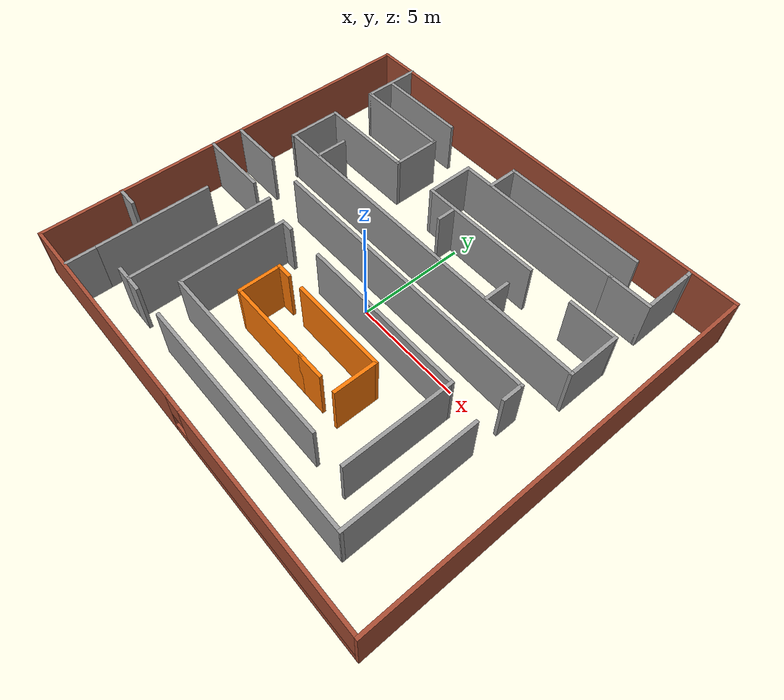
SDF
<?xml version='1.0'?>
<sdf version='1.6'>
  <model name='officeroom'>
    <pose frame=''>0.028159 0.537764 0 0 -0 0</pose>
    <link name='Wall_0'>
      <collision name='Wall_0_Collision'>
        <geometry>
          <box>
            <size>2 0.15 2.5</size>
          </box>
        </geometry>
        <pose frame=''>0 0 1.25 0 -0 0</pose>
      </collision>
      <visual name='Wall_0_Visual'>
        <pose frame=''>0 0 1.25 0 -0 0</pose>
        <geometry>
          <box>
            <size>2 0.15 2.5</size>
          </box>
        </geometry>
        <material>
          <script>
            <uri>file://media/materials/scripts/gazebo.material</uri>
            <name>Gazebo/Grey</name>
          </script>
          <ambient>0.996078 0.47451 0.0196078 1</ambient>
        </material>
        <meta>
          <layer>0</layer>
        </meta>
      </visual>
      <pose frame=''>-2.48816 -3.76276 0 0 -0 -1.5708</pose>
    </link>
    <link name='Wall_1'>
      <collision name='Wall_1_Collision'>
        <geometry>
          <box>
            <size>4 0.15 2.5</size>
          </box>
        </geometry>
        <pose frame=''>0 0 1.25 0 -0 0</pose>
      </collision>
      <visual name='Wall_1_Visual'>
        <pose frame=''>0 0 1.25 0 -0 0</pose>
        <geometry>
          <box>
            <size>4 0.15 2.5</size>
          </box>
        </geometry>
        <material>
          <script>
            <uri>file://media/materials/scripts/gazebo.material</uri>
            <name>Gazebo/Grey</name>
          </script>
          <ambient>0.996078 0.47451 0.0196078 1</ambient>
        </material>
        <meta>
          <layer>0</layer>
        </meta>
      </visual>
      <pose frame=''>-0.563159 -4.68776 0 0 -0 0</pose>
    </link>
    <link name='Wall_10'>
      <collision name='Wall_10_Collision'>
        <geometry>
          <box>
            <size>8.5 0.15 2.5</size>
          </box>
        </geometry>
        <pose frame=''>0 0 1.25 0 -0 0</pose>
      </collision>
      <visual name='Wall_10_Visual'>
        <pose frame=''>0 0 1.25 0 -0 0</pose>
        <geometry>
          <box>
            <size>8.5 0.15 2.5</size>
          </box>
        </geometry>
        <material>
          <script>
            <uri>file://media/materials/scripts/gazebo.material</uri>
            <name>Gazebo/Grey</name>
          </script>
          <ambient>1 1 1 1</ambient>
        </material>
        <meta>
          <layer>0</layer>
        </meta>
      </visual>
      <pose frame=''>-0.128138 -6.19217 0 0 -0 0</pose>
    </link>
    <link name='Wall_12'>
      <collision name='Wall_12_Collision'>
        <geometry>
          <box>
            <size>5 0.15 2.5</size>
          </box>
        </geometry>
        <pose frame=''>0 0 1.25 0 -0 0</pose>
      </collision>
      <visual name='Wall_12_Visual'>
        <pose frame=''>0 0 1.25 0 -0 0</pose>
        <geometry>
          <box>
            <size>5 0.15 2.5</size>
          </box>
        </geometry>
        <material>
          <script>
            <uri>file://media/materials/scripts/gazebo.material</uri>
            <name>Gazebo/Grey</name>
          </script>
          <ambient>1 1 1 1</ambient>
        </material>
        <meta>
          <layer>0</layer>
        </meta>
      </visual>
      <pose frame=''>5.64686 -3.76716 0 0 -0 1.5708</pose>
    </link>
    <link name='Wall_13'>
      <collision name='Wall_13_Collision'>
        <geometry>
          <box>
            <size>7.75 0.15 2.5</size>
          </box>
        </geometry>
        <pose frame=''>0 0 1.25 0 -0 0</pose>
      </collision>
      <visual name='Wall_13_Visual'>
        <pose frame=''>0 0 1.25 0 -0 0</pose>
        <geometry>
          <box>
            <size>7.75 0.15 2.5</size>
          </box>
        </geometry>
        <material>
          <script>
            <uri>file://media/materials/scripts/gazebo.material</uri>
            <name>Gazebo/Grey</name>
          </script>
          <ambient>1 1 1 1</ambient>
        </material>
        <meta>
          <layer>0</layer>
        </meta>
      </visual>
      <pose frame=''>1.84686 -1.34217 0 0 -0 3.14159</pose>
    </link>
    <link name='Wall_15'>
      <collision name='Wall_15_Collision'>
        <geometry>
          <box>
            <size>0.5 0.15 2.5</size>
          </box>
        </geometry>
        <pose frame=''>0 0 1.25 0 -0 0</pose>
      </collision>
      <visual name='Wall_15_Visual'>
        <pose frame=''>0 0 1.25 0 -0 0</pose>
        <geometry>
          <box>
            <size>0.5 0.15 2.5</size>
          </box>
        </geometry>
        <material>
          <script>
            <uri>file://media/materials/scripts/gazebo.material</uri>
            <name>Gazebo/Grey</name>
          </script>
          <ambient>1 1 1 1</ambient>
        </material>
        <meta>
          <layer>0</layer>
        </meta>
      </visual>
      <pose frame=''>-3.97814 -1.34217 0 0 -0 3.14159</pose>
    </link>
    <link name='Wall_19'>
      <collision name='Wall_19_Collision'>
        <geometry>
          <box>
            <size>13.25 0.15 2.5</size>
          </box>
        </geometry>
        <pose frame=''>0 0 1.25 0 -0 0</pose>
      </collision>
      <visual name='Wall_19_Visual'>
        <pose frame=''>0 0 1.25 0 -0 0</pose>
        <geometry>
          <box>
            <size>13.25 0.15 2.5</size>
          </box>
        </geometry>
        <material>
          <script>
            <uri>file://media/materials/scripts/gazebo.material</uri>
            <name>Gazebo/Grey</name>
          </script>
          <ambient>1 1 1 1</ambient>
        </material>
        <meta>
          <layer>0</layer>
        </meta>
      </visual>
      <pose frame=''>0.753619 0.421126 0 0 -0 0</pose>
    </link>
    <link name='Wall_2'>
      <collision name='Wall_2_Collision'>
        <geometry>
          <box>
            <size>1.25 0.15 2.5</size>
          </box>
        </geometry>
        <pose frame=''>0 0 1.25 0 -0 0</pose>
      </collision>
      <visual name='Wall_2_Visual'>
        <pose frame=''>0 0 1.25 0 -0 0</pose>
        <geometry>
          <box>
            <size>1.25 0.15 2.5</size>
          </box>
        </geometry>
        <material>
          <script>
            <uri>file://media/materials/scripts/gazebo.material</uri>
            <name>Gazebo/Grey</name>
          </script>
          <ambient>0.996078 0.47451 0.0196078 1</ambient>
        </material>
        <meta>
          <layer>0</layer>
        </meta>
      </visual>
      <pose frame=''>1.91184 -4.68776 0 0 -0 0</pose>
    </link>
    <link name='Wall_20'>
      <collision name='Wall_20_Collision'>
        <geometry>
          <box>
            <size>1 0.15 2.5</size>
          </box>
        </geometry>
        <pose frame=''>0 0 1.25 0 -0 0</pose>
      </collision>
      <visual name='Wall_20_Visual'>
        <pose frame=''>0 0 1.25 0 -0 0</pose>
        <geometry>
          <box>
            <size>1 0.15 2.5</size>
          </box>
        </geometry>
        <material>
          <script>
            <uri>file://media/materials/scripts/gazebo.material</uri>
            <name>Gazebo/Grey</name>
          </script>
          <ambient>1 1 1 1</ambient>
        </material>
        <meta>
          <layer>0</layer>
        </meta>
      </visual>
      <pose frame=''>7.30362 -0.003874 0 0 -0 -1.5708</pose>
    </link>
    <link name='Wall_22'>
      <collision name='Wall_22_Collision'>
        <geometry>
          <box>
            <size>6 0.15 2.5</size>
          </box>
        </geometry>
        <pose frame=''>0 0 1.25 0 -0 0</pose>
      </collision>
      <visual name='Wall_22_Visual'>
        <pose frame=''>0 0 1.25 0 -0 0</pose>
        <geometry>
          <box>
            <size>6 0.15 2.5</size>
          </box>
        </geometry>
        <material>
          <script>
            <uri>file://media/materials/scripts/gazebo.material</uri>
            <name>Gazebo/Grey</name>
          </script>
          <ambient>1 1 1 1</ambient>
        </material>
        <meta>
          <layer>0</layer>
        </meta>
      </visual>
      <pose frame=''>7.30362 -4.70387 0 0 -0 -1.5708</pose>
    </link>
    <link name='Wall_23'>
      <collision name='Wall_23_Collision'>
        <geometry>
          <box>
            <size>10.945 0.15 2.5</size>
          </box>
        </geometry>
        <pose frame=''>0 0 1.25 0 -0 0</pose>
      </collision>
      <visual name='Wall_23_Visual'>
        <pose frame=''>0 0 1.25 0 -0 0</pose>
        <geometry>
          <box>
            <size>10.945 0.15 2.5</size>
          </box>
        </geometry>
        <material>
          <script>
            <uri>file://media/materials/scripts/gazebo.material</uri>
            <name>Gazebo/Grey</name>
          </script>
          <ambient>1 1 1 1</ambient>
        </material>
        <meta>
          <layer>0</layer>
        </meta>
      </visual>
      <pose frame=''>1.90614 -7.63143 0 0 -0 -3.14112</pose>
    </link>
    <link name='Wall_25'>
      <collision name='Wall_25_Collision'>
        <geometry>
          <box>
            <size>0.805113 0.15 2.5</size>
          </box>
        </geometry>
        <pose frame=''>0 0 1.25 0 -0 0</pose>
      </collision>
      <visual name='Wall_25_Visual'>
        <pose frame=''>0 0 1.25 0 -0 0</pose>
        <geometry>
          <box>
            <size>0.805113 0.15 2.5</size>
          </box>
        </geometry>
        <material>
          <script>
            <uri>file://media/materials/scripts/gazebo.material</uri>
            <name>Gazebo/Grey</name>
          </script>
          <ambient>1 1 1 1</ambient>
        </material>
        <meta>
          <layer>0</layer>
        </meta>
      </visual>
      <pose frame=''>-5.41886 -7.63143 0 0 -0 3.13379</pose>
    </link>
    <link name='Wall_26'>
      <collision name='Wall_26_Collision'>
        <geometry>
          <box>
            <size>6.75 0.15 2.5</size>
          </box>
        </geometry>
        <pose frame=''>0 0 1.25 0 -0 0</pose>
      </collision>
      <visual name='Wall_26_Visual'>
        <pose frame=''>0 0 1.25 0 -0 0</pose>
        <geometry>
          <box>
            <size>6.75 0.15 2.5</size>
          </box>
        </geometry>
        <material>
          <script>
            <uri>file://media/materials/scripts/gazebo.material</uri>
            <name>Gazebo/Grey</name>
          </script>
          <ambient>1 1 1 1</ambient>
        </material>
        <meta>
          <layer>0</layer>
        </meta>
      </visual>
      <pose frame=''>-5.74638 -4.32887 0 0 -0 1.5708</pose>
    </link>
    <link name='Wall_29'>
      <pose frame=''>0.008167 -9.18936 0 0 -0 0</pose>
      <visual name='Wall_29_Visual_0'>
        <pose frame=''>-5.22023 0 1.25 0 -0 0</pose>
        <geometry>
          <box>
            <size>9.80953 0.15 2.5</size>
          </box>
        </geometry>
        <material>
          <script>
            <uri>file://media/materials/scripts/gazebo.material</uri>
            <name>Gazebo/Bricks</name>
          </script>
          <ambient>1 1 1 1</ambient>
        </material>
        <meta>
          <layer>0</layer>
        </meta>
      </visual>
      <collision name='Wall_29_Collision_0'>
        <geometry>
          <box>
            <size>9.80953 0.15 2.5</size>
          </box>
        </geometry>
        <pose frame=''>-5.22023 0 1.25 0 -0 0</pose>
      </collision>
      <visual name='Wall_29_Visual_1'>
        <pose frame=''>4.90477 0 0.25 0 -0 0</pose>
        <geometry>
          <box>
            <size>10.4405 0.15 0.5</size>
          </box>
        </geometry>
        <material>
          <script>
            <uri>file://media/materials/scripts/gazebo.material</uri>
            <name>Gazebo/Bricks</name>
          </script>
          <ambient>1 1 1 1</ambient>
        </material>
        <meta>
          <layer>0</layer>
        </meta>
      </visual>
      <collision name='Wall_29_Collision_1'>
        <geometry>
          <box>
            <size>10.4405 0.15 0.5</size>
          </box>
        </geometry>
        <pose frame=''>4.90477 0 0.25 0 -0 0</pose>
      </collision>
      <visual name='Wall_29_Visual_2'>
        <pose frame=''>5.30476 0 1.5 0 -0 0</pose>
        <geometry>
          <box>
            <size>9.64047 0.15 2</size>
          </box>
        </geometry>
        <material>
          <script>
            <uri>file://media/materials/scripts/gazebo.material</uri>
            <name>Gazebo/Bricks</name>
          </script>
          <ambient>1 1 1 1</ambient>
        </material>
        <meta>
          <layer>0</layer>
        </meta>
      </visual>
      <collision name='Wall_29_Collision_2'>
        <geometry>
          <box>
            <size>9.64047 0.15 2</size>
          </box>
        </geometry>
        <pose frame=''>5.30476 0 1.5 0 -0 0</pose>
      </collision>
      <visual name='Wall_29_Visual_3'>
        <pose frame=''>0.084531 0 1.9 0 -0 0</pose>
        <geometry>
          <box>
            <size>0.8 0.15 1.2</size>
          </box>
        </geometry>
        <material>
          <script>
            <uri>file://media/materials/scripts/gazebo.material</uri>
            <name>Gazebo/Bricks</name>
          </script>
          <ambient>1 1 1 1</ambient>
        </material>
        <meta>
          <layer>0</layer>
        </meta>
      </visual>
      <collision name='Wall_29_Collision_3'>
        <geometry>
          <box>
            <size>0.8 0.15 1.2</size>
          </box>
        </geometry>
        <pose frame=''>0.084531 0 1.9 0 -0 0</pose>
      </collision>
    </link>
    <link name='Wall_30'>
      <collision name='Wall_30_Collision'>
        <geometry>
          <box>
            <size>18.5 0.15 2.5</size>
          </box>
        </geometry>
        <pose frame=''>0 0 1.25 0 -0 0</pose>
      </collision>
      <visual name='Wall_30_Visual'>
        <pose frame=''>0 0 1.25 0 -0 0</pose>
        <geometry>
          <box>
            <size>18.5 0.15 2.5</size>
          </box>
        </geometry>
        <material>
          <script>
            <uri>file://media/materials/scripts/gazebo.material</uri>
            <name>Gazebo/Bricks</name>
          </script>
          <ambient>1 1 1 1</ambient>
        </material>
        <meta>
          <layer>0</layer>
        </meta>
      </visual>
      <pose frame=''>10.0582 -0.014363 0 0 -0 1.5708</pose>
    </link>
    <link name='Wall_31'>
      <collision name='Wall_31_Collision'>
        <geometry>
          <box>
            <size>20.25 0.15 2.5</size>
          </box>
        </geometry>
        <pose frame=''>0 0 1.25 0 -0 0</pose>
      </collision>
      <visual name='Wall_31_Visual'>
        <pose frame=''>0 0 1.25 0 -0 0</pose>
        <geometry>
          <box>
            <size>20.25 0.15 2.5</size>
          </box>
        </geometry>
        <material>
          <script>
            <uri>file://media/materials/scripts/gazebo.material</uri>
            <name>Gazebo/Bricks</name>
          </script>
          <ambient>1 1 1 1</ambient>
        </material>
        <meta>
          <layer>0</layer>
        </meta>
      </visual>
      <pose frame=''>0.008167 9.16064 0 0 -0 3.14159</pose>
    </link>
    <link name='Wall_32'>
      <collision name='Wall_32_Collision'>
        <geometry>
          <box>
            <size>18.5 0.15 2.5</size>
          </box>
        </geometry>
        <pose frame=''>0 0 1.25 0 -0 0</pose>
      </collision>
      <visual name='Wall_32_Visual'>
        <pose frame=''>0 0 1.25 0 -0 0</pose>
        <geometry>
          <box>
            <size>18.5 0.15 2.5</size>
          </box>
        </geometry>
        <material>
          <script>
            <uri>file://media/materials/scripts/gazebo.material</uri>
            <name>Gazebo/Bricks</name>
          </script>
          <ambient>1 1 1 1</ambient>
        </material>
        <meta>
          <layer>0</layer>
        </meta>
      </visual>
      <pose frame=''>-10.0418 -0.014363 0 0 -0 -1.5708</pose>
    </link>
    <link name='Wall_35'>
      <collision name='Wall_35_Collision'>
        <geometry>
          <box>
            <size>1.5 0.15 2.5</size>
          </box>
        </geometry>
        <pose frame=''>0 0 1.25 0 -0 0</pose>
      </collision>
      <visual name='Wall_35_Visual'>
        <pose frame=''>0 0 1.25 0 -0 0</pose>
        <geometry>
          <box>
            <size>1.5 0.15 2.5</size>
          </box>
        </geometry>
        <material>
          <script>
            <uri>file://media/materials/scripts/gazebo.material</uri>
            <name>Gazebo/Grey</name>
          </script>
          <ambient>1 1 1 1</ambient>
        </material>
        <meta>
          <layer>0</layer>
        </meta>
      </visual>
      <pose frame=''>-7.96202 -8.42823 0 0 -0 1.5708</pose>
    </link>
    <link name='Wall_38'>
      <collision name='Wall_38_Collision'>
        <geometry>
          <box>
            <size>0.75 0.15 2.5</size>
          </box>
        </geometry>
        <pose frame=''>0 0 1.25 0 -0 0</pose>
      </collision>
      <visual name='Wall_38_Visual'>
        <pose frame=''>0 0 1.25 0 -0 0</pose>
        <geometry>
          <box>
            <size>0.75 0.15 2.5</size>
          </box>
        </geometry>
        <material>
          <script>
            <uri>file://media/materials/scripts/gazebo.material</uri>
            <name>Gazebo/Grey</name>
          </script>
          <ambient>1 1 1 1</ambient>
        </material>
        <meta>
          <layer>0</layer>
        </meta>
      </visual>
      <pose frame=''>-6.04638 -7.62887 0 0 -0 3.14159</pose>
    </link>
    <link name='Wall_4'>
      <collision name='Wall_4_Collision'>
        <geometry>
          <box>
            <size>2 0.15 2.5</size>
          </box>
        </geometry>
        <pose frame=''>0 0 1.25 0 -0 0</pose>
      </collision>
      <visual name='Wall_4_Visual'>
        <pose frame=''>0 0 1.25 0 -0 0</pose>
        <geometry>
          <box>
            <size>2 0.15 2.5</size>
          </box>
        </geometry>
        <material>
          <script>
            <uri>file://media/materials/scripts/gazebo.material</uri>
            <name>Gazebo/Grey</name>
          </script>
          <ambient>0.996078 0.47451 0.0196078 1</ambient>
        </material>
        <meta>
          <layer>0</layer>
        </meta>
      </visual>
      <pose frame=''>3.31184 -3.76276 0 0 -0 1.5708</pose>
    </link>
    <link name='Wall_40'>
      <collision name='Wall_40_Collision'>
        <geometry>
          <box>
            <size>2.75 0.15 2.5</size>
          </box>
        </geometry>
        <pose frame=''>0 0 1.25 0 -0 0</pose>
      </collision>
      <visual name='Wall_40_Visual'>
        <pose frame=''>0 0 1.25 0 -0 0</pose>
        <geometry>
          <box>
            <size>2.75 0.15 2.5</size>
          </box>
        </geometry>
        <material>
          <script>
            <uri>file://media/materials/scripts/gazebo.material</uri>
            <name>Gazebo/Grey</name>
          </script>
          <ambient>1 1 1 1</ambient>
        </material>
        <meta>
          <layer>0</layer>
        </meta>
      </visual>
      <pose frame=''>-8.24263 7.88936 0 0 -0 -1.5708</pose>
    </link>
    <link name='Wall_41'>
      <collision name='Wall_41_Collision'>
        <geometry>
          <box>
            <size>4.5 0.15 2.5</size>
          </box>
        </geometry>
        <pose frame=''>0 0 1.25 0 -0 0</pose>
      </collision>
      <visual name='Wall_41_Visual'>
        <pose frame=''>0 0 1.25 0 -0 0</pose>
        <geometry>
          <box>
            <size>4.5 0.15 2.5</size>
          </box>
        </geometry>
        <material>
          <script>
            <uri>file://media/materials/scripts/gazebo.material</uri>
            <name>Gazebo/Grey</name>
          </script>
          <ambient>1 1 1 1</ambient>
        </material>
        <meta>
          <layer>0</layer>
        </meta>
      </visual>
      <pose frame=''>-6.06763 6.58936 0 0 -0 0</pose>
    </link>
    <link name='Wall_42'>
      <collision name='Wall_42_Collision'>
        <geometry>
          <box>
            <size>2.25 0.15 2.5</size>
          </box>
        </geometry>
        <pose frame=''>0 0 1.25 0 -0 0</pose>
      </collision>
      <visual name='Wall_42_Visual'>
        <pose frame=''>0 0 1.25 0 -0 0</pose>
        <geometry>
          <box>
            <size>2.25 0.15 2.5</size>
          </box>
        </geometry>
        <material>
          <script>
            <uri>file://media/materials/scripts/gazebo.material</uri>
            <name>Gazebo/Grey</name>
          </script>
          <ambient>1 1 1 1</ambient>
        </material>
        <meta>
          <layer>0</layer>
        </meta>
      </visual>
      <pose frame=''>-3.89263 5.53936 0 0 -0 -1.5708</pose>
    </link>
    <link name='Wall_43'>
      <collision name='Wall_43_Collision'>
        <geometry>
          <box>
            <size>4.5 0.15 2.5</size>
          </box>
        </geometry>
        <pose frame=''>0 0 1.25 0 -0 0</pose>
      </collision>
      <visual name='Wall_43_Visual'>
        <pose frame=''>0 0 1.25 0 -0 0</pose>
        <geometry>
          <box>
            <size>4.5 0.15 2.5</size>
          </box>
        </geometry>
        <material>
          <script>
            <uri>file://media/materials/scripts/gazebo.material</uri>
            <name>Gazebo/Grey</name>
          </script>
          <ambient>1 1 1 1</ambient>
        </material>
        <meta>
          <layer>0</layer>
        </meta>
      </visual>
      <pose frame=''>-6.06763 4.48936 0 0 -0 3.14159</pose>
    </link>
    <link name='Wall_44'>
      <collision name='Wall_44_Collision'>
        <geometry>
          <box>
            <size>2.53459 0.15 2.5</size>
          </box>
        </geometry>
        <pose frame=''>0 0 1.25 0 -0 0</pose>
      </collision>
      <visual name='Wall_44_Visual'>
        <pose frame=''>0 0 1.25 0 -0 0</pose>
        <geometry>
          <box>
            <size>2.53459 0.15 2.5</size>
          </box>
        </geometry>
        <material>
          <script>
            <uri>file://media/materials/scripts/gazebo.material</uri>
            <name>Gazebo/Grey</name>
          </script>
          <ambient>1 1 1 1</ambient>
        </material>
        <meta>
          <layer>0</layer>
        </meta>
      </visual>
      <pose frame=''>-8.24263 3.29707 0 0 -0 -1.5708</pose>
    </link>
    <link name='Wall_45'>
      <collision name='Wall_45_Collision'>
        <geometry>
          <box>
            <size>16.5 0.15 2.5</size>
          </box>
        </geometry>
        <pose frame=''>0 0 1.25 0 -0 0</pose>
      </collision>
      <visual name='Wall_45_Visual'>
        <pose frame=''>0 0 1.25 0 -0 0</pose>
        <geometry>
          <box>
            <size>16.5 0.15 2.5</size>
          </box>
        </geometry>
        <material>
          <script>
            <uri>file://media/materials/scripts/gazebo.material</uri>
            <name>Gazebo/Grey</name>
          </script>
          <ambient>1 1 1 1</ambient>
        </material>
        <meta>
          <layer>0</layer>
        </meta>
      </visual>
      <pose frame=''>-0.067633 2.13936 0 0 -0 0</pose>
    </link>
    <link name='Wall_46'>
      <collision name='Wall_46_Collision'>
        <geometry>
          <box>
            <size>2.53459 0.15 2.5</size>
          </box>
        </geometry>
        <pose frame=''>0 0 1.25 0 -0 0</pose>
      </collision>
      <visual name='Wall_46_Visual'>
        <pose frame=''>0 0 1.25 0 -0 0</pose>
        <geometry>
          <box>
            <size>2.53459 0.15 2.5</size>
          </box>
        </geometry>
        <material>
          <script>
            <uri>file://media/materials/scripts/gazebo.material</uri>
            <name>Gazebo/Grey</name>
          </script>
          <ambient>1 1 1 1</ambient>
        </material>
        <meta>
          <layer>0</layer>
        </meta>
      </visual>
      <pose frame=''>8.10737 3.29707 0 0 -0 1.5708</pose>
    </link>
    <link name='Wall_47'>
      <collision name='Wall_47_Collision'>
        <geometry>
          <box>
            <size>2.25 0.15 2.5</size>
          </box>
        </geometry>
        <pose frame=''>0 0 1.25 0 -0 0</pose>
      </collision>
      <visual name='Wall_47_Visual'>
        <pose frame=''>0 0 1.25 0 -0 0</pose>
        <geometry>
          <box>
            <size>2.25 0.15 2.5</size>
          </box>
        </geometry>
        <material>
          <script>
            <uri>file://media/materials/scripts/gazebo.material</uri>
            <name>Gazebo/Grey</name>
          </script>
          <ambient>1 1 1 1</ambient>
        </material>
        <meta>
          <layer>0</layer>
        </meta>
      </visual>
      <pose frame=''>7.05737 4.48936 0 0 -0 3.14159</pose>
    </link>
    <link name='Wall_49'>
      <collision name='Wall_49_Collision'>
        <geometry>
          <box>
            <size>5.75 0.15 2.5</size>
          </box>
        </geometry>
        <pose frame=''>0 0 1.25 0 -0 0</pose>
      </collision>
      <visual name='Wall_49_Visual'>
        <pose frame=''>0 0 1.25 0 -0 0</pose>
        <geometry>
          <box>
            <size>5.75 0.15 2.5</size>
          </box>
        </geometry>
        <material>
          <script>
            <uri>file://media/materials/scripts/gazebo.material</uri>
            <name>Gazebo/Grey</name>
          </script>
          <ambient>1 1 1 1</ambient>
        </material>
        <meta>
          <layer>0</layer>
        </meta>
      </visual>
      <pose frame=''>1.10737 4.48936 0 0 -0 3.14159</pose>
    </link>
    <link name='Wall_5'>
      <collision name='Wall_5_Collision'>
        <geometry>
          <box>
            <size>4.5 0.15 2.5</size>
          </box>
        </geometry>
        <pose frame=''>0 0 1.25 0 -0 0</pose>
      </collision>
      <visual name='Wall_5_Visual'>
        <pose frame=''>0 0 1.25 0 -0 0</pose>
        <geometry>
          <box>
            <size>4.5 0.15 2.5</size>
          </box>
        </geometry>
        <material>
          <script>
            <uri>file://media/materials/scripts/gazebo.material</uri>
            <name>Gazebo/Grey</name>
          </script>
          <ambient>0.996078 0.47451 0.0196078 1</ambient>
        </material>
        <meta>
          <layer>0</layer>
        </meta>
      </visual>
      <pose frame=''>1.13684 -2.83776 0 0 -0 3.14159</pose>
    </link>
    <link name='Wall_50'>
      <collision name='Wall_50_Collision'>
        <geometry>
          <box>
            <size>2.25 0.15 2.5</size>
          </box>
        </geometry>
        <pose frame=''>0 0 1.25 0 -0 0</pose>
      </collision>
      <visual name='Wall_50_Visual'>
        <pose frame=''>0 0 1.25 0 -0 0</pose>
        <geometry>
          <box>
            <size>2.25 0.15 2.5</size>
          </box>
        </geometry>
        <material>
          <script>
            <uri>file://media/materials/scripts/gazebo.material</uri>
            <name>Gazebo/Grey</name>
          </script>
          <ambient>1 1 1 1</ambient>
        </material>
        <meta>
          <layer>0</layer>
        </meta>
      </visual>
      <pose frame=''>-1.69263 5.53936 0 0 -0 1.5708</pose>
    </link>
    <link name='Wall_51'>
      <collision name='Wall_51_Collision'>
        <geometry>
          <box>
            <size>8 0.15 2.5</size>
          </box>
        </geometry>
        <pose frame=''>0 0 1.25 0 -0 0</pose>
      </collision>
      <visual name='Wall_51_Visual'>
        <pose frame=''>0 0 1.25 0 -0 0</pose>
        <geometry>
          <box>
            <size>8 0.15 2.5</size>
          </box>
        </geometry>
        <material>
          <script>
            <uri>file://media/materials/scripts/gazebo.material</uri>
            <name>Gazebo/Grey</name>
          </script>
          <ambient>1 1 1 1</ambient>
        </material>
        <meta>
          <layer>0</layer>
        </meta>
      </visual>
      <pose frame=''>2.23237 6.58936 0 0 -0 0</pose>
    </link>
    <link name='Wall_52'>
      <collision name='Wall_52_Collision'>
        <geometry>
          <box>
            <size>2 0.15 2.5</size>
          </box>
        </geometry>
        <pose frame=''>0 0 1.25 0 -0 0</pose>
      </collision>
      <visual name='Wall_52_Visual'>
        <pose frame=''>0 0 1.25 0 -0 0</pose>
        <geometry>
          <box>
            <size>2 0.15 2.5</size>
          </box>
        </geometry>
        <material>
          <script>
            <uri>file://media/materials/scripts/gazebo.material</uri>
            <name>Gazebo/Grey</name>
          </script>
          <ambient>1 1 1 1</ambient>
        </material>
        <meta>
          <layer>0</layer>
        </meta>
      </visual>
      <pose frame=''>7.08237 6.58936 0 0 -0 0</pose>
    </link>
    <link name='Wall_53'>
      <collision name='Wall_53_Collision'>
        <geometry>
          <box>
            <size>2.5 0.15 2.5</size>
          </box>
        </geometry>
        <pose frame=''>0 0 1.25 0 -0 0</pose>
      </collision>
      <visual name='Wall_53_Visual'>
        <pose frame=''>0 0 1.25 0 -0 0</pose>
        <geometry>
          <box>
            <size>2.5 0.15 2.5</size>
          </box>
        </geometry>
        <material>
          <script>
            <uri>file://media/materials/scripts/gazebo.material</uri>
            <name>Gazebo/Grey</name>
          </script>
          <ambient>1 1 1 1</ambient>
        </material>
        <meta>
          <layer>0</layer>
        </meta>
      </visual>
      <pose frame=''>8.00737 7.76436 0 0 -0 1.5708</pose>
    </link>
    <link name='Wall_54'>
      <collision name='Wall_54_Collision'>
        <geometry>
          <box>
            <size>0.25 0.15 2.5</size>
          </box>
        </geometry>
        <pose frame=''>0 0 1.25 0 -0 0</pose>
      </collision>
      <visual name='Wall_54_Visual'>
        <pose frame=''>0 0 1.25 0 -0 0</pose>
        <geometry>
          <box>
            <size>0.25 0.15 2.5</size>
          </box>
        </geometry>
        <material>
          <script>
            <uri>file://media/materials/scripts/gazebo.material</uri>
            <name>Gazebo/Grey</name>
          </script>
          <ambient>1 1 1 1</ambient>
        </material>
        <meta>
          <layer>0</layer>
        </meta>
      </visual>
      <pose frame=''>8.00737 8.98936 0 0 -0 1.5708</pose>
    </link>
    <link name='Wall_56'>
      <collision name='Wall_56_Collision'>
        <geometry>
          <box>
            <size>1.5 0.15 2.5</size>
          </box>
        </geometry>
        <pose frame=''>0 0 1.25 0 -0 0</pose>
      </collision>
      <visual name='Wall_56_Visual'>
        <pose frame=''>0 0 1.25 0 -0 0</pose>
        <geometry>
          <box>
            <size>1.5 0.15 2.5</size>
          </box>
        </geometry>
        <material>
          <script>
            <uri>file://media/materials/scripts/gazebo.material</uri>
            <name>Gazebo/Grey</name>
          </script>
          <ambient>1 1 1 1</ambient>
        </material>
        <meta>
          <layer>0</layer>
        </meta>
      </visual>
      <pose frame=''>-0.306455 7.29488 0 0 -0 1.5708</pose>
    </link>
    <link name='Wall_58'>
      <collision name='Wall_58_Collision'>
        <geometry>
          <box>
            <size>6.75 0.15 2.5</size>
          </box>
        </geometry>
        <pose frame=''>0 0 1.25 0 -0 0</pose>
      </collision>
      <visual name='Wall_58_Visual'>
        <pose frame=''>0 0 1.25 0 -0 0</pose>
        <geometry>
          <box>
            <size>6.75 0.15 2.5</size>
          </box>
        </geometry>
        <material>
          <script>
            <uri>file://media/materials/scripts/gazebo.material</uri>
            <name>Gazebo/Grey</name>
          </script>
          <ambient>1 1 1 1</ambient>
        </material>
        <meta>
          <layer>0</layer>
        </meta>
      </visual>
      <pose frame=''>2.99355 7.96988 0 0 -0 0</pose>
    </link>
    <link name='Wall_60'>
      <collision name='Wall_60_Collision'>
        <geometry>
          <box>
            <size>3.25 0.15 2.5</size>
          </box>
        </geometry>
        <pose frame=''>0 0 1.25 0 -0 0</pose>
      </collision>
      <visual name='Wall_60_Visual'>
        <pose frame=''>0 0 1.25 0 -0 0</pose>
        <geometry>
          <box>
            <size>3.25 0.15 2.5</size>
          </box>
        </geometry>
        <material>
          <script>
            <uri>file://media/materials/scripts/gazebo.material</uri>
            <name>Gazebo/Grey</name>
          </script>
          <ambient>1 1 1 1</ambient>
        </material>
        <meta>
          <layer>0</layer>
        </meta>
      </visual>
      <pose frame=''>-8.50354 -0.948265 0 0 -0 0</pose>
    </link>
    <link name='Wall_62'>
      <collision name='Wall_62_Collision'>
        <geometry>
          <box>
            <size>5.25 0.15 2.5</size>
          </box>
        </geometry>
        <pose frame=''>0 0 1.25 0 -0 0</pose>
      </collision>
      <visual name='Wall_62_Visual'>
        <pose frame=''>0 0 1.25 0 -0 0</pose>
        <geometry>
          <box>
            <size>5.25 0.15 2.5</size>
          </box>
        </geometry>
        <material>
          <script>
            <uri>file://media/materials/scripts/gazebo.material</uri>
            <name>Gazebo/Grey</name>
          </script>
          <ambient>1 1 1 1</ambient>
        </material>
        <meta>
          <layer>0</layer>
        </meta>
      </visual>
      <pose frame=''>-7.96202 -5.20323 0 0 -0 1.5708</pose>
    </link>
    <link name='Wall_64'>
      <collision name='Wall_64_Collision'>
        <geometry>
          <box>
            <size>1 0.15 2.5</size>
          </box>
        </geometry>
        <pose frame=''>0 0 1.25 0 -0 0</pose>
      </collision>
      <visual name='Wall_64_Visual'>
        <pose frame=''>0 0 1.25 0 -0 0</pose>
        <geometry>
          <box>
            <size>1 0.15 2.5</size>
          </box>
        </geometry>
        <material>
          <script>
            <uri>file://media/materials/scripts/gazebo.material</uri>
            <name>Gazebo/Grey</name>
          </script>
          <ambient>1 1 1 1</ambient>
        </material>
        <meta>
          <layer>0</layer>
        </meta>
      </visual>
      <pose frame=''>-9.63317 -5.49814 0 0 -0 0</pose>
    </link>
    <link name='Wall_66'>
      <collision name='Wall_66_Collision'>
        <geometry>
          <box>
            <size>2.5 0.15 2.5</size>
          </box>
        </geometry>
        <pose frame=''>0 0 1.25 0 -0 0</pose>
      </collision>
      <visual name='Wall_66_Visual'>
        <pose frame=''>0 0 1.25 0 -0 0</pose>
        <geometry>
          <box>
            <size>2.5 0.15 2.5</size>
          </box>
        </geometry>
        <material>
          <script>
            <uri>file://media/materials/scripts/gazebo.material</uri>
            <name>Gazebo/Grey</name>
          </script>
          <ambient>1 1 1 1</ambient>
        </material>
        <meta>
          <layer>0</layer>
        </meta>
      </visual>
      <pose frame=''>-8.83057 0.498408 0 0 -0 0</pose>
    </link>
    <link name='Wall_68'>
      <collision name='Wall_68_Collision'>
        <geometry>
          <box>
            <size>1.5 0.15 2.5</size>
          </box>
        </geometry>
        <pose frame=''>0 0 1.25 0 -0 0</pose>
      </collision>
      <visual name='Wall_68_Visual'>
        <pose frame=''>0 0 1.25 0 -0 0</pose>
        <geometry>
          <box>
            <size>1.5 0.15 2.5</size>
          </box>
        </geometry>
        <material>
          <script>
            <uri>file://media/materials/scripts/gazebo.material</uri>
            <name>Gazebo/Grey</name>
          </script>
          <ambient>1 1 1 1</ambient>
        </material>
        <meta>
          <layer>0</layer>
        </meta>
      </visual>
      <pose frame=''>-6.49461 2.87003 0 0 -0 1.5708</pose>
    </link>
    <link name='Wall_7'>
      <collision name='Wall_7_Collision'>
        <geometry>
          <box>
            <size>0.75 0.15 2.5</size>
          </box>
        </geometry>
        <pose frame=''>0 0 1.25 0 -0 0</pose>
      </collision>
      <visual name='Wall_7_Visual'>
        <pose frame=''>0 0 1.25 0 -0 0</pose>
        <geometry>
          <box>
            <size>0.75 0.15 2.5</size>
          </box>
        </geometry>
        <material>
          <script>
            <uri>file://media/materials/scripts/gazebo.material</uri>
            <name>Gazebo/Grey</name>
          </script>
          <ambient>0.996078 0.47451 0.0196078 1</ambient>
        </material>
        <meta>
          <layer>0</layer>
        </meta>
      </visual>
      <pose frame=''>-2.18816 -2.83776 0 0 -0 -3.14159</pose>
    </link>
    <link name='Wall_70'>
      <collision name='Wall_70_Collision'>
        <geometry>
          <box>
            <size>1 0.15 2.5</size>
          </box>
        </geometry>
        <pose frame=''>0 0 1.25 0 -0 0</pose>
      </collision>
      <visual name='Wall_70_Visual'>
        <pose frame=''>0 0 1.25 0 -0 0</pose>
        <geometry>
          <box>
            <size>1 0.15 2.5</size>
          </box>
        </geometry>
        <material>
          <script>
            <uri>file://media/materials/scripts/gazebo.material</uri>
            <name>Gazebo/Grey</name>
          </script>
          <ambient>1 1 1 1</ambient>
        </material>
        <meta>
          <layer>0</layer>
        </meta>
      </visual>
      <pose frame=''>-0.330609 4.07003 0 0 -0 -1.5708</pose>
    </link>
    <link name='Wall_72'>
      <collision name='Wall_72_Collision'>
        <geometry>
          <box>
            <size>1.25 0.15 2.5</size>
          </box>
        </geometry>
        <pose frame=''>0 0 1.25 0 -0 0</pose>
      </collision>
      <visual name='Wall_72_Visual'>
        <pose frame=''>0 0 1.25 0 -0 0</pose>
        <geometry>
          <box>
            <size>1.25 0.15 2.5</size>
          </box>
        </geometry>
        <material>
          <script>
            <uri>file://media/materials/scripts/gazebo.material</uri>
            <name>Gazebo/Grey</name>
          </script>
          <ambient>1 1 1 1</ambient>
        </material>
        <meta>
          <layer>0</layer>
        </meta>
      </visual>
      <pose frame=''>3.80939 2.74503 0 0 -0 1.5708</pose>
    </link>
    <link name='Wall_77'>
      <collision name='Wall_77_Collision'>
        <geometry>
          <box>
            <size>4.25 0.15 2.5</size>
          </box>
        </geometry>
        <pose frame=''>0 0 1.25 0 -0 0</pose>
      </collision>
      <visual name='Wall_77_Visual'>
        <pose frame=''>0 0 1.25 0 -0 0</pose>
        <geometry>
          <box>
            <size>4.25 0.15 2.5</size>
          </box>
        </geometry>
        <material>
          <script>
            <uri>file://media/materials/scripts/gazebo.material</uri>
            <name>Gazebo/Grey</name>
          </script>
          <ambient>1 1 1 1</ambient>
        </material>
        <meta>
          <layer>0</layer>
        </meta>
      </visual>
      <pose frame=''>-6.16557 7.87149 0 0 -0 0</pose>
    </link>
    <link name='Wall_9'>
      <collision name='Wall_9_Collision'>
        <geometry>
          <box>
            <size>5 0.15 2.5</size>
          </box>
        </geometry>
        <pose frame=''>0 0 1.25 0 -0 0</pose>
      </collision>
      <visual name='Wall_9_Visual'>
        <pose frame=''>0 0 1.25 0 -0 0</pose>
        <geometry>
          <box>
            <size>5 0.15 2.5</size>
          </box>
        </geometry>
        <material>
          <script>
            <uri>file://media/materials/scripts/gazebo.material</uri>
            <name>Gazebo/Grey</name>
          </script>
          <ambient>1 1 1 1</ambient>
        </material>
        <meta>
          <layer>0</layer>
        </meta>
      </visual>
      <pose frame=''>-4.30314 -3.76716 0 0 -0 -1.5708</pose>
    </link>
    <static>1</static>
  </model>
</sdf>
